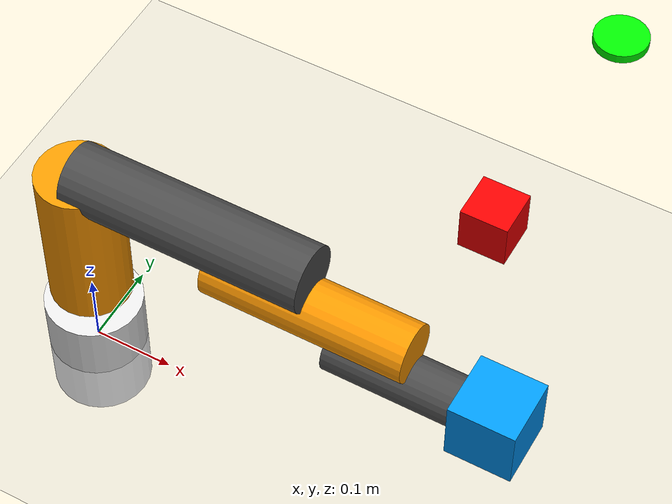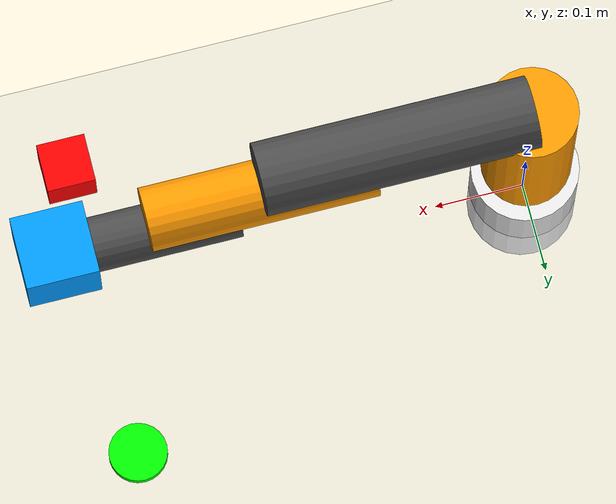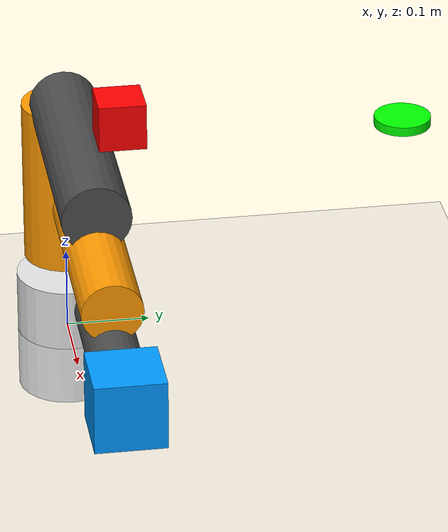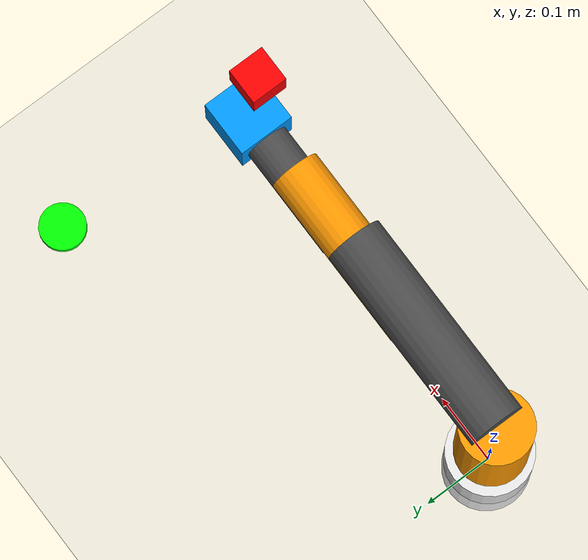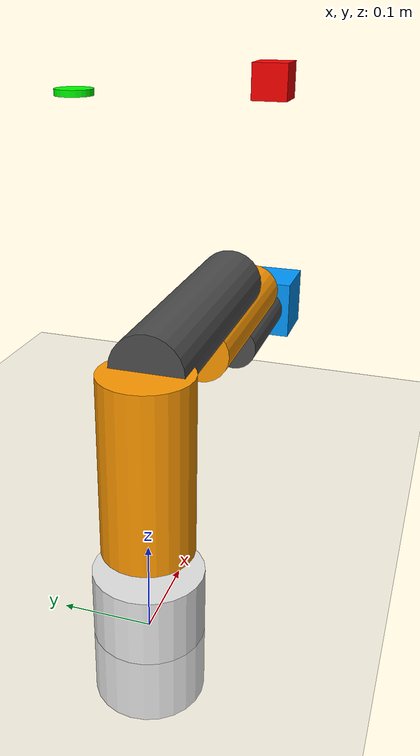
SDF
<?xml version="1.0"?>
<sdf version="1.6">
  <world name="robot_demo">

    <physics name="1ms" type="ode">
      <max_step_size>0.001</max_step_size>
      <real_time_factor>1.0</real_time_factor>
    </physics>

    <scene>
      <ambient>0.4 0.4 0.4 1</ambient>
      <background>0.7 0.7 0.7 1</background>
      <shadows>true</shadows>
    </scene>

    <light type="directional" name="sun">
      <cast_shadows>true</cast_shadows>
      <pose>0 0 10 0 0 0</pose>
      <diffuse>1 1 1 1</diffuse>
      <specular>0.5 0.5 0.5 1</specular>
      <direction>-0.5 0.1 -0.9</direction>
    </light>

    <!-- Ground -->
    <model name="ground_plane">
      <static>true</static>
      <link name="link">
        <collision name="collision">
          <geometry>
            <plane>
              <normal>0 0 1</normal>
              <size>100 100</size>
            </plane>
          </geometry>
        </collision>
        <visual name="visual">
          <geometry>
            <plane>
              <normal>0 0 1</normal>
              <size>100 100</size>
            </plane>
          </geometry>
          <material>
            <ambient>0.8 0.8 0.8 1</ambient>
            <diffuse>0.8 0.8 0.8 1</diffuse>
            <specular>0 0 0 1</specular>
          </material>
        </visual>
      </link>
    </model>

    <!-- Panda-like 6-DOF Robot Arm -->
    <model name="panda_arm">
      <pose>0 0 0 0 0 0</pose>
      <static>false</static>

      <!-- Base Link -->
      <link name="base_link">
        <pose>0 0 0 0 0 0</pose>
        <inertial>
          <mass>4.0</mass>
          <inertia>
            <ixx>0.1</ixx>
            <ixy>0</ixy>
            <ixz>0</ixz>
            <iyy>0.1</iyy>
            <iyz>0</iyz>
            <izz>0.1</izz>
          </inertia>
        </inertial>
        <collision name="collision">
          <geometry>
            <cylinder>
              <radius>0.06</radius>
              <length>0.15</length>
            </cylinder>
          </geometry>
        </collision>
        <visual name="visual">
          <geometry>
            <cylinder>
              <radius>0.06</radius>
              <length>0.15</length>
            </cylinder>
          </geometry>
          <material>
            <ambient>0.9 0.9 0.9 1</ambient>
            <diffuse>0.9 0.9 0.9 1</diffuse>
          </material>
        </visual>
      </link>

      <!-- Link 1 (Vertical) -->
      <link name="link1">
        <pose>0 0 0.2 0 0 0</pose>
        <inertial>
          <mass>3.0</mass>
          <inertia>
            <ixx>0.05</ixx>
            <iyy>0.05</iyy>
            <izz>0.01</izz>
          </inertia>
        </inertial>
        <collision name="collision">
          <geometry>
            <cylinder>
              <radius>0.05</radius>
              <length>0.2</length>
            </cylinder>
          </geometry>
        </collision>
        <visual name="visual">
          <geometry>
            <cylinder>
              <radius>0.05</radius>
              <length>0.2</length>
            </cylinder>
          </geometry>
          <material>
            <ambient>1 0.5 0 1</ambient>
            <diffuse>1 0.6 0 1</diffuse>
          </material>
        </visual>
      </link>

      <!-- Link 2 (Upper Arm) -->
      <link name="link2">
        <pose>0.15 0 0.3 0 1.57 0</pose>
        <inertial>
          <mass>2.5</mass>
          <inertia>
            <ixx>0.04</ixx>
            <iyy>0.04</iyy>
            <izz>0.01</izz>
          </inertia>
        </inertial>
        <collision name="collision">
          <geometry>
            <cylinder>
              <radius>0.04</radius>
              <length>0.3</length>
            </cylinder>
          </geometry>
        </collision>
        <visual name="visual">
          <geometry>
            <cylinder>
              <radius>0.04</radius>
              <length>0.3</length>
            </cylinder>
          </geometry>
          <material>
            <ambient>0.2 0.2 0.2 1</ambient>
            <diffuse>0.3 0.3 0.3 1</diffuse>
          </material>
        </visual>
      </link>

      <!-- Link 3 (Forearm Part 1) -->
      <link name="link3">
        <pose>0.3 0 0.25 0 1.57 0</pose>
        <inertial>
          <mass>2.0</mass>
          <inertia>
            <ixx>0.03</ixx>
            <iyy>0.03</iyy>
            <izz>0.01</izz>
          </inertia>
        </inertial>
        <collision name="collision">
          <geometry>
            <cylinder>
              <radius>0.035</radius>
              <length>0.25</length>
            </cylinder>
          </geometry>
        </collision>
        <visual name="visual">
          <geometry>
            <cylinder>
              <radius>0.035</radius>
              <length>0.25</length>
            </cylinder>
          </geometry>
          <material>
            <ambient>1 0.5 0 1</ambient>
            <diffuse>1 0.6 0 1</diffuse>
          </material>
        </visual>
      </link>

      <!-- Link 4 (Forearm Part 2) -->
      <link name="link4">
        <pose>0.425 0 0.2 0 1.57 0</pose>
        <inertial>
          <mass>1.5</mass>
          <inertia>
            <ixx>0.02</ixx>
            <iyy>0.02</iyy>
            <izz>0.01</izz>
          </inertia>
        </inertial>
        <collision name="collision">
          <geometry>
            <cylinder>
              <radius>0.03</radius>
              <length>0.2</length>
            </cylinder>
          </geometry>
        </collision>
        <visual name="visual">
          <geometry>
            <cylinder>
              <radius>0.03</radius>
              <length>0.2</length>
            </cylinder>
          </geometry>
          <material>
            <ambient>0.2 0.2 0.2 1</ambient>
            <diffuse>0.3 0.3 0.3 1</diffuse>
          </material>
        </visual>
      </link>

      <!-- Gripper/End Effector -->
      <link name="gripper">
        <pose>0.525 0 0.2 0 0 0</pose>
        <inertial>
          <mass>0.5</mass>
          <inertia>
            <ixx>0.001</ixx>
            <iyy>0.001</iyy>
            <izz>0.001</izz>
          </inertia>
        </inertial>
        <collision name="collision">
          <geometry>
            <box>
              <size>0.08 0.08 0.08</size>
            </box>
          </geometry>
        </collision>
        <visual name="visual">
          <geometry>
            <box>
              <size>0.08 0.08 0.08</size>
            </box>
          </geometry>
          <material>
            <ambient>0 0.5 1 1</ambient>
            <diffuse>0 0.6 1 1</diffuse>
          </material>
        </visual>
      </link>

      <!-- Joints -->
      <joint name="joint1" type="revolute">
        <parent>base_link</parent>
        <child>link1</child>
        <pose>0 0 -0.1 0 0 0</pose>
        <axis>
          <xyz>0 0 1</xyz>
          <limit>
            <lower>-2.8973</lower>
            <upper>2.8973</upper>
          </limit>
        </axis>
      </joint>

      <joint name="joint2" type="revolute">
        <parent>link1</parent>
        <child>link2</child>
        <pose>-0.15 0 0 0 0 0</pose>
        <axis>
          <xyz>0 1 0</xyz>
          <limit>
            <lower>-1.7628</lower>
            <upper>1.7628</upper>
          </limit>
        </axis>
      </joint>

      <joint name="joint3" type="revolute">
        <parent>link2</parent>
        <child>link3</child>
        <pose>-0.125 0 0 0 0 0</pose>
        <axis>
          <xyz>0 1 0</xyz>
          <limit>
            <lower>-1.7628</lower>
            <upper>1.7628</upper>
          </limit>
        </axis>
      </joint>

      <joint name="joint4" type="revolute">
        <parent>link3</parent>
        <child>link4</child>
        <pose>-0.1 0 0 0 0 0</pose>
        <axis>
          <xyz>0 1 0</xyz>
          <limit>
            <lower>-3.0718</lower>
            <upper>3.0718</upper>
          </limit>
        </axis>
      </joint>

      <joint name="joint5" type="fixed">
        <parent>link4</parent>
        <child>gripper</child>
      </joint>

    </model>

    <!-- Red Cube (Target Object) -->
    <model name="cube">
      <pose>0.5 0 0.525 0 0 0</pose>
      <link name="link">
        <collision name="collision">
          <geometry>
            <box>
              <size>0.05 0.05 0.05</size>
            </box>
          </geometry>
        </collision>
        <visual name="visual">
          <geometry>
            <box>
              <size>0.05 0.05 0.05</size>
            </box>
          </geometry>
          <material>
            <ambient>1 0 0 1</ambient>
            <diffuse>1 0 0 1</diffuse>
          </material>
        </visual>
        <inertial>
          <mass>0.1</mass>
        </inertial>
      </link>
    </model>

    <!-- Green Target Marker -->
    <model name="target">
      <pose>0.5 0.3 0.5 0 0 0</pose>
      <static>true</static>
      <link name="link">
        <visual name="visual">
          <geometry>
            <cylinder>
              <radius>0.03</radius>
              <length>0.01</length>
            </cylinder>
          </geometry>
          <material>
            <ambient>0 1 0 1</ambient>
            <diffuse>0 1 0 1</diffuse>
          </material>
        </visual>
      </link>
    </model>

  </world>
</sdf>
